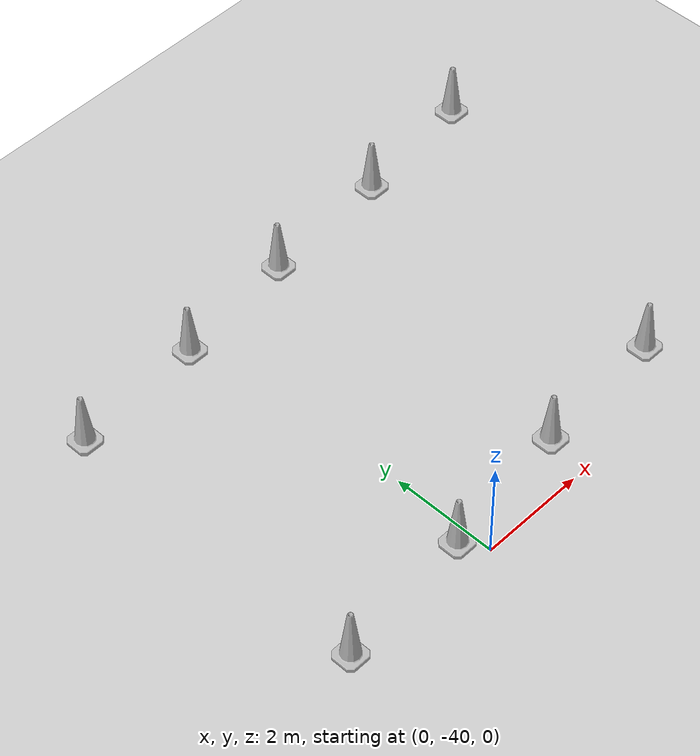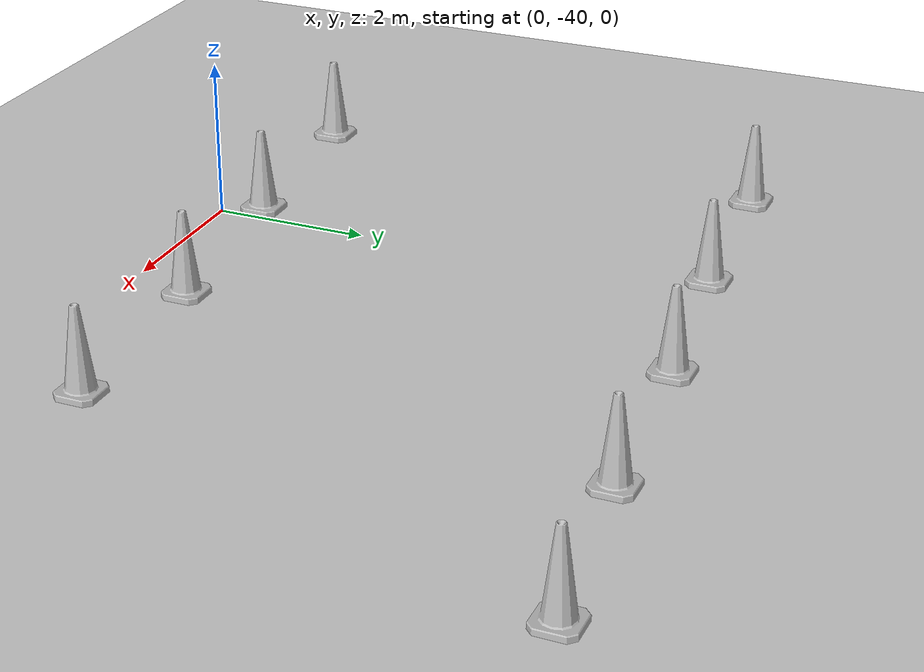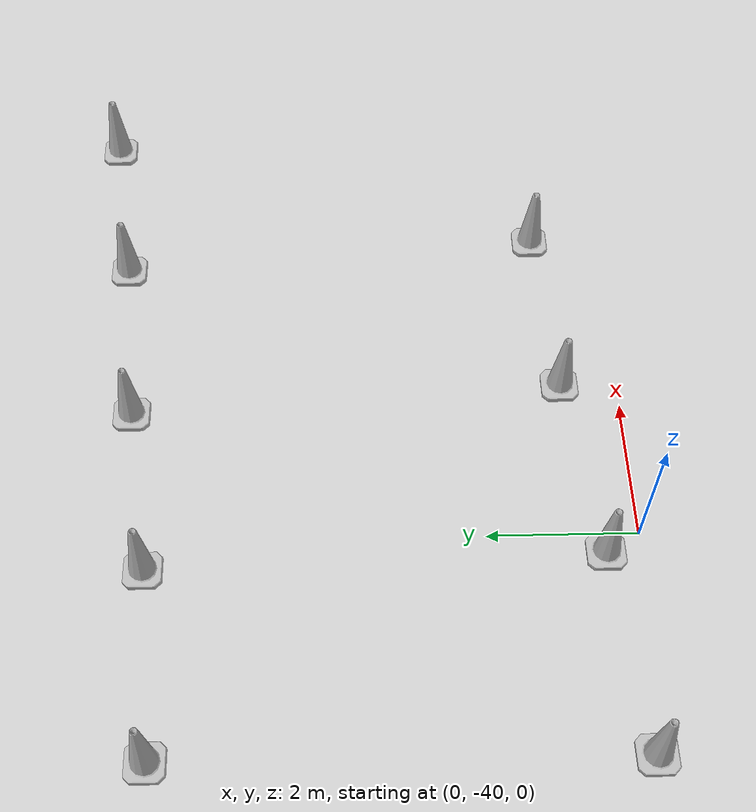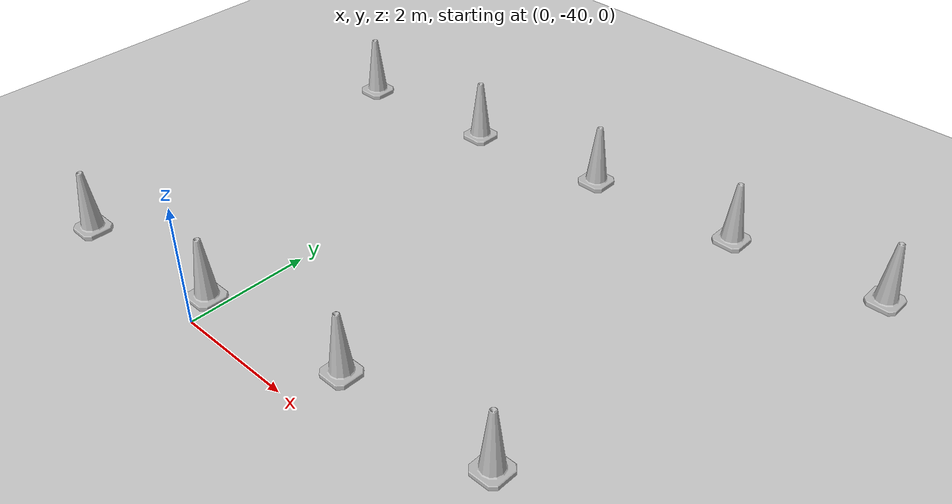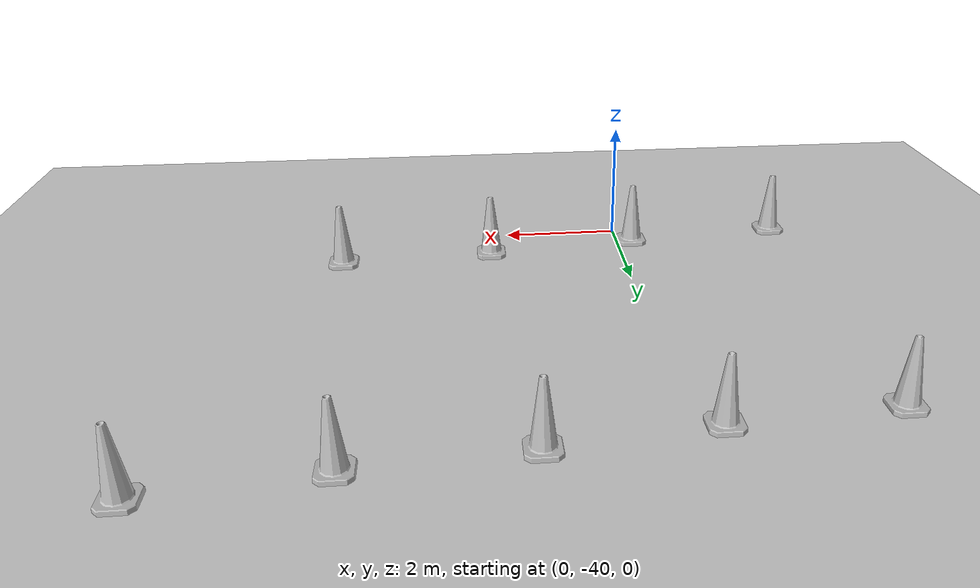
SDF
<sdf version="1.7">
 <world name="default">
  <model name="ground_plane">
   <static>1</static>
   <link name="link">
    <collision name="collision">
     <geometry><plane><normal>0 0 1</normal><size>125 125</size></plane></geometry>
     <surface>
      <contact><collide_bitmask>65535</collide_bitmask></contact>
      <friction><ode><mu>100</mu><mu2>50</mu2></ode></friction>
     </surface>
    </collision>
    <visual name="visual">
     <cast_shadows>0</cast_shadows>
     <geometry><plane><normal>0 0 1</normal><size>125 125</size></plane></geometry>
     <material>
      <script><uri>file://media/materials/scripts/gazebo.material</uri><name>Gazebo/Grey</name></script>
     </material>
    </visual>
   </link>
  </model>
  <model name="Construction Cone 299">
   <link name="link">
    <collision name="collision">
     <geometry>
      <mesh><scale>10 10 10</scale><uri>model://construction_cone/meshes/construction_cone.dae</uri></mesh>
     </geometry>
    </collision>
    <visual name="visual">
     <geometry>
      <mesh><scale>10 10 10</scale><uri>model://construction_cone/meshes/construction_cone.dae</uri></mesh>
     </geometry>
    </visual>
    <inertial>
     <inertia><ixx>1</ixx><ixy>0</ixy><ixz>0</ixz><iyy>1</iyy><iyz>0</iyz><izz>1</izz></inertia>
     <mass>1</mass>
    </inertial>
   </link>
   <pose>6.955325304268186 -32.74483648003627 0 0 0 0</pose>
  </model>
  <model name="Construction Cone 301">
   <link name="link">
    <collision name="collision">
     <geometry>
      <mesh><scale>10 10 10</scale><uri>model://construction_cone/meshes/construction_cone.dae</uri></mesh>
     </geometry>
    </collision>
    <visual name="visual">
     <geometry>
      <mesh><scale>10 10 10</scale><uri>model://construction_cone/meshes/construction_cone.dae</uri></mesh>
     </geometry>
    </visual>
    <inertial>
     <inertia><ixx>1</ixx><ixy>0</ixy><ixz>0</ixz><iyy>1</iyy><iyz>0</iyz><izz>1</izz></inertia>
     <mass>1</mass>
    </inertial>
   </link>
   <pose>4.525325304268186 -33.04599032619011 0 0 0 0</pose>
  </model>
  <model name="Construction Cone 302">
   <link name="link">
    <collision name="collision">
     <geometry>
      <mesh><scale>10 10 10</scale><uri>model://construction_cone/meshes/construction_cone.dae</uri></mesh>
     </geometry>
    </collision>
    <visual name="visual">
     <geometry>
      <mesh><scale>10 10 10</scale><uri>model://construction_cone/meshes/construction_cone.dae</uri></mesh>
     </geometry>
    </visual>
    <inertial>
     <inertia><ixx>1</ixx><ixy>0</ixy><ixz>0</ixz><iyy>1</iyy><iyz>0</iyz><izz>1</izz></inertia>
     <mass>1</mass>
    </inertial>
   </link>
   <pose>1.985248381191262 -33.248144172343956 0 0 0 0</pose>
  </model>
  <model name="Construction Cone 303">
   <link name="link">
    <collision name="collision">
     <geometry>
      <mesh><scale>10 10 10</scale><uri>model://construction_cone/meshes/construction_cone.dae</uri></mesh>
     </geometry>
    </collision>
    <visual name="visual">
     <geometry>
      <mesh><scale>10 10 10</scale><uri>model://construction_cone/meshes/construction_cone.dae</uri></mesh>
     </geometry>
    </visual>
    <inertial>
     <inertia><ixx>1</ixx><ixy>0</ixy><ixz>0</ixz><iyy>1</iyy><iyz>0</iyz><izz>1</izz></inertia>
     <mass>1</mass>
    </inertial>
   </link>
   <pose>-0.4177516188087367 -33.54964417234396 0 0 0 0</pose>
  </model>
  <model name="Construction Cone 304">
   <link name="link">
    <collision name="collision">
     <geometry>
      <mesh><scale>10 10 10</scale><uri>model://construction_cone/meshes/construction_cone.dae</uri></mesh>
     </geometry>
    </collision>
    <visual name="visual">
     <geometry>
      <mesh><scale>10 10 10</scale><uri>model://construction_cone/meshes/construction_cone.dae</uri></mesh>
     </geometry>
    </visual>
    <inertial>
     <inertia><ixx>1</ixx><ixy>0</ixy><ixz>0</ixz><iyy>1</iyy><iyz>0</iyz><izz>1</izz></inertia>
     <mass>1</mass>
    </inertial>
   </link>
   <pose>-2.9490016188087367 -33.73526917234396 0 0 0 0</pose>
  </model>
  <model name="Construction Cone 338">
   <link name="link">
    <collision name="collision">
     <geometry>
      <mesh><scale>10 10 10</scale><uri>model://construction_cone/meshes/construction_cone.dae</uri></mesh>
     </geometry>
    </collision>
    <visual name="visual">
     <geometry>
      <mesh><scale>10 10 10</scale><uri>model://construction_cone/meshes/construction_cone.dae</uri></mesh>
     </geometry>
    </visual>
    <inertial>
     <inertia><ixx>1</ixx><ixy>0</ixy><ixz>0</ixz><iyy>1</iyy><iyz>0</iyz><izz>1</izz></inertia>
     <mass>1</mass>
    </inertial>
   </link>
   <pose>4.964248381191261 -39.01714417234396 0 0 0 0</pose>
  </model>
  <model name="Construction Cone 339">
   <link name="link">
    <collision name="collision">
     <geometry>
      <mesh><scale>10 10 10</scale><uri>model://construction_cone/meshes/construction_cone.dae</uri></mesh>
     </geometry>
    </collision>
    <visual name="visual">
     <geometry>
      <mesh><scale>10 10 10</scale><uri>model://construction_cone/meshes/construction_cone.dae</uri></mesh>
     </geometry>
    </visual>
    <inertial>
     <inertia><ixx>1</ixx><ixy>0</ixy><ixz>0</ixz><iyy>1</iyy><iyz>0</iyz><izz>1</izz></inertia>
     <mass>1</mass>
    </inertial>
   </link>
   <pose>2.3497483811912616 -39.197144172343954 0 0 0 0</pose>
  </model>
  <model name="Construction Cone 340">
   <link name="link">
    <collision name="collision">
     <geometry>
      <mesh><scale>10 10 10</scale><uri>model://construction_cone/meshes/construction_cone.dae</uri></mesh>
     </geometry>
    </collision>
    <visual name="visual">
     <geometry>
      <mesh><scale>10 10 10</scale><uri>model://construction_cone/meshes/construction_cone.dae</uri></mesh>
     </geometry>
    </visual>
    <inertial>
     <inertia><ixx>1</ixx><ixy>0</ixy><ixz>0</ixz><iyy>1</iyy><iyz>0</iyz><izz>1</izz></inertia>
     <mass>1</mass>
    </inertial>
   </link>
   <pose>-0.27047889153601545 -39.53259871779851 0 0 0 0</pose>
  </model>
  <model name="Construction Cone 342">
   <link name="link">
    <collision name="collision">
     <geometry>
      <mesh><scale>10 10 10</scale><uri>model://construction_cone/meshes/construction_cone.dae</uri></mesh>
     </geometry>
    </collision>
    <visual name="visual">
     <geometry>
      <mesh><scale>10 10 10</scale><uri>model://construction_cone/meshes/construction_cone.dae</uri></mesh>
     </geometry>
    </visual>
    <inertial>
     <inertia><ixx>1</ixx><ixy>0</ixy><ixz>0</ixz><iyy>1</iyy><iyz>0</iyz><izz>1</izz></inertia>
     <mass>1</mass>
    </inertial>
   </link>
   <pose>-2.973751618808741 -39.80914417234396 0 0 0 0</pose>
  </model>
 </world>
</sdf>
